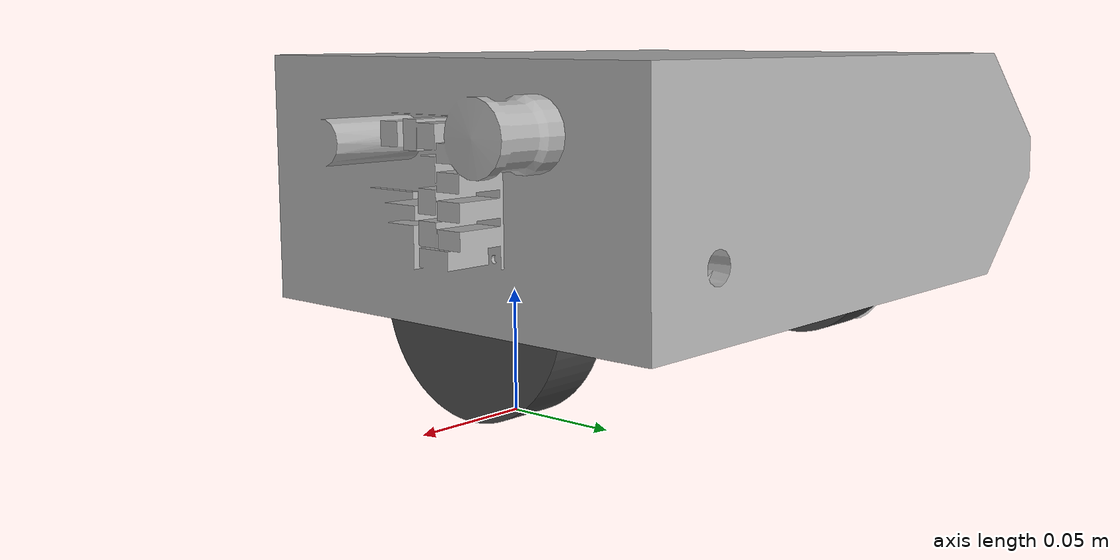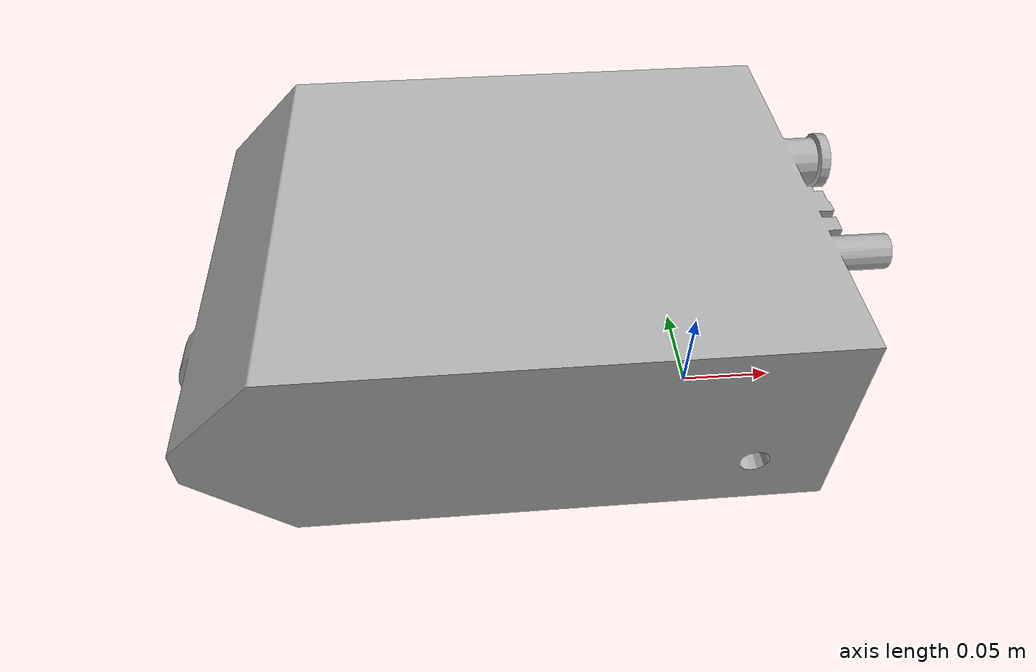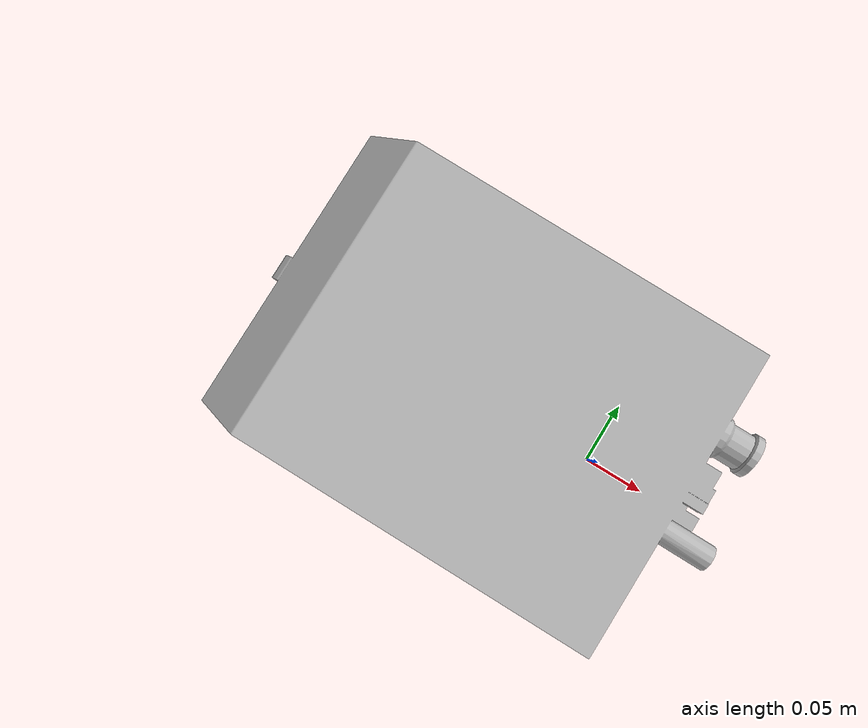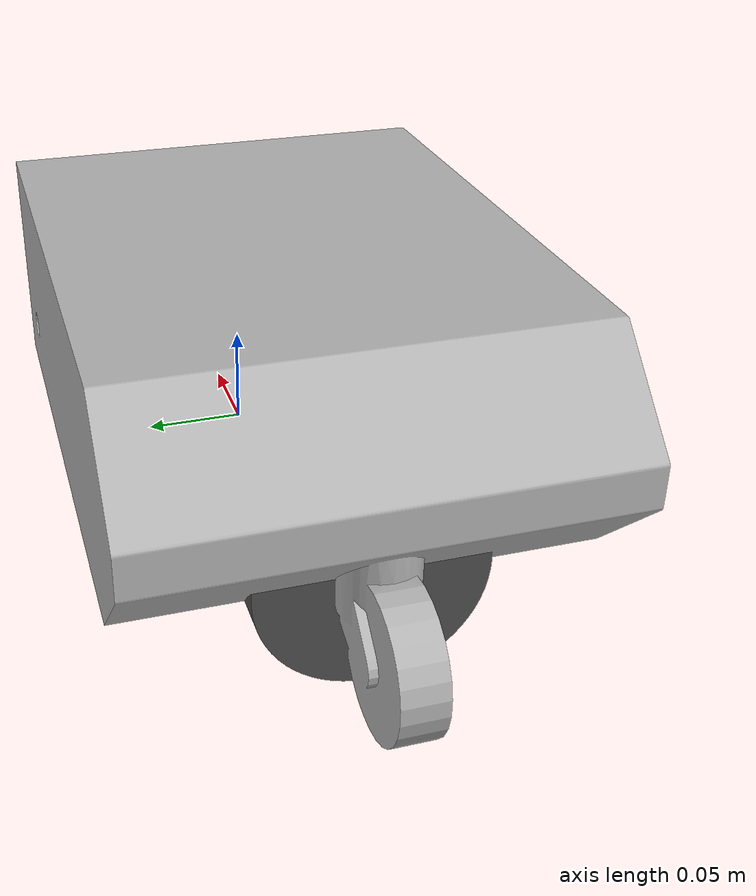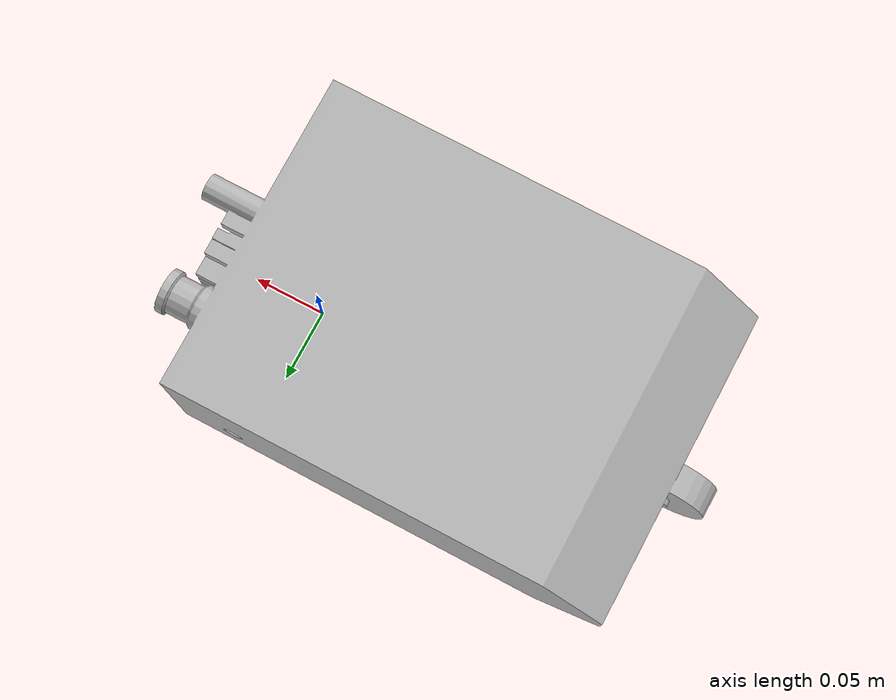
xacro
<?xml version="1.0" ?>
<robot name="mega3" xmlns:xacro="http://www.ros.org/wiki/xacro">

<xacro:include filename="$(find mega3_description)/urdf/materials.xacro" />
<xacro:include filename="$(find mega3_description)/urdf/mega3.gazebo" />

<link name="base_footprint" />

<joint name="base_joint" type="fixed">
  <parent link="base_footprint"/>
  <child link="base_link" />
  <origin xyz="-0.1 0 0" rpy="0 0 -1.5708"/>
</joint>

<link name="base_link">
  <inertial>
    <origin xyz="-0.0001512201285105937 -3.420007213019073e-05 0.08388833658828038" rpy="0 0 0"/>
    <mass value="11.744482"/>
    <inertia ixx="0.091465" iyy="0.06435" izz="0.1253"
             ixy="0.001018" iyz="-0.002369"
             ixz="0.000233"/>
  </inertial>
  <visual>
    <origin xyz="0 0 0" rpy="0 0 0"/>
    <geometry>
      <mesh filename="package://mega3_description/meshes/base_link.stl" scale="0.0001 0.0001 0.0001"/>
    </geometry>
    <material name="silver"/>
  </visual>
  <collision>
    <origin xyz="0 0 0" rpy="0 0 0"/>
    <geometry>
      <mesh filename="package://mega3_description/meshes/base_link.stl" scale="0.0001 0.0001 0.0001"/>
    </geometry>
  </collision>
</link>

<link name="left_wheel_1">
  <inertial>
    <origin xyz="0.0 0.0 0.00213" rpy="0 1.5708 0"/>
    <mass value="1.239934"/>
    <inertia ixx="0.002474" iyy="0.00174" izz="0.00174"
             ixy="0.000" iyz="0.000"
             ixz="-0.000"/>
  </inertial>
  <visual>
    <origin xyz="-0.07 -0.1 -0.136" rpy="0 1.5708 0"/>
    <geometry>
      <mesh filename="package://mega3_description/meshes/left_wheel_1.stl" scale="0.001 0.001 0.001"/>
    </geometry>
    <material name="dark_grey"/>
  </visual>
  <collision>
    <origin xyz="-0.07 -0.1 -0.136" rpy="0 1.5708 0"/>
    <geometry>
      <mesh filename="package://mega3_description/meshes/left_wheel_1.stl" scale="0.001 0.001 0.001"/>
    </geometry>
  </collision>
</link>

<link name="right_wheel_1">
  <inertial>
    <origin xyz="0 0 -0.00213" rpy="0 1.5708 0"/>
    <mass value="1.239934"/>
    <inertia ixx="0.002474" iyy="0.00174" izz="0.00174"
             ixy="-0.000" iyz="-0.000"
             ixz="-0.000"/>
  </inertial>
  <visual>
    <origin xyz="-0.07 -0.1 0.136" rpy="0 1.5708 0"/>
    <geometry>
      <mesh filename="package://mega3_description/meshes/right_wheel_1.stl" scale="0.001 0.001 0.001"/>
    </geometry>
    <material name="dark_grey"/>
  </visual>
  <collision>
    <origin xyz="-0.07 -0.1 0.136" rpy="0 1.5708 0"/>
    <geometry>
      <mesh filename="package://mega3_description/meshes/right_wheel_1.stl" scale="0.001 0.001 0.001"/>
    </geometry>
  </collision>
</link>

<joint name="left_wheel_joint" type="continuous">
  <origin xyz="-0.136 0.1 0.07" rpy="0 -1.5708 0"/>
  <parent link="base_link"/>
  <child link="left_wheel_1"/>
  <axis xyz="0.0 0.0 1.0"/>
</joint>

<joint name="right_wheel_joint" type="continuous">
  <origin xyz="0.136 0.1 0.07" rpy="0 -1.5708 0"/>
  <parent link="base_link"/>
  <child link="right_wheel_1"/>
  <axis xyz="0.0 0.0 1.0"/>
</joint>

</robot>

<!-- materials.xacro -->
<robot name="practice" xmlns:xacro="http://www.ros.org/wiki/xacro" >

<material name="silver">
  <color rgba="0.700 0.700 0.700 1.000"/>
</material>

</robot>
